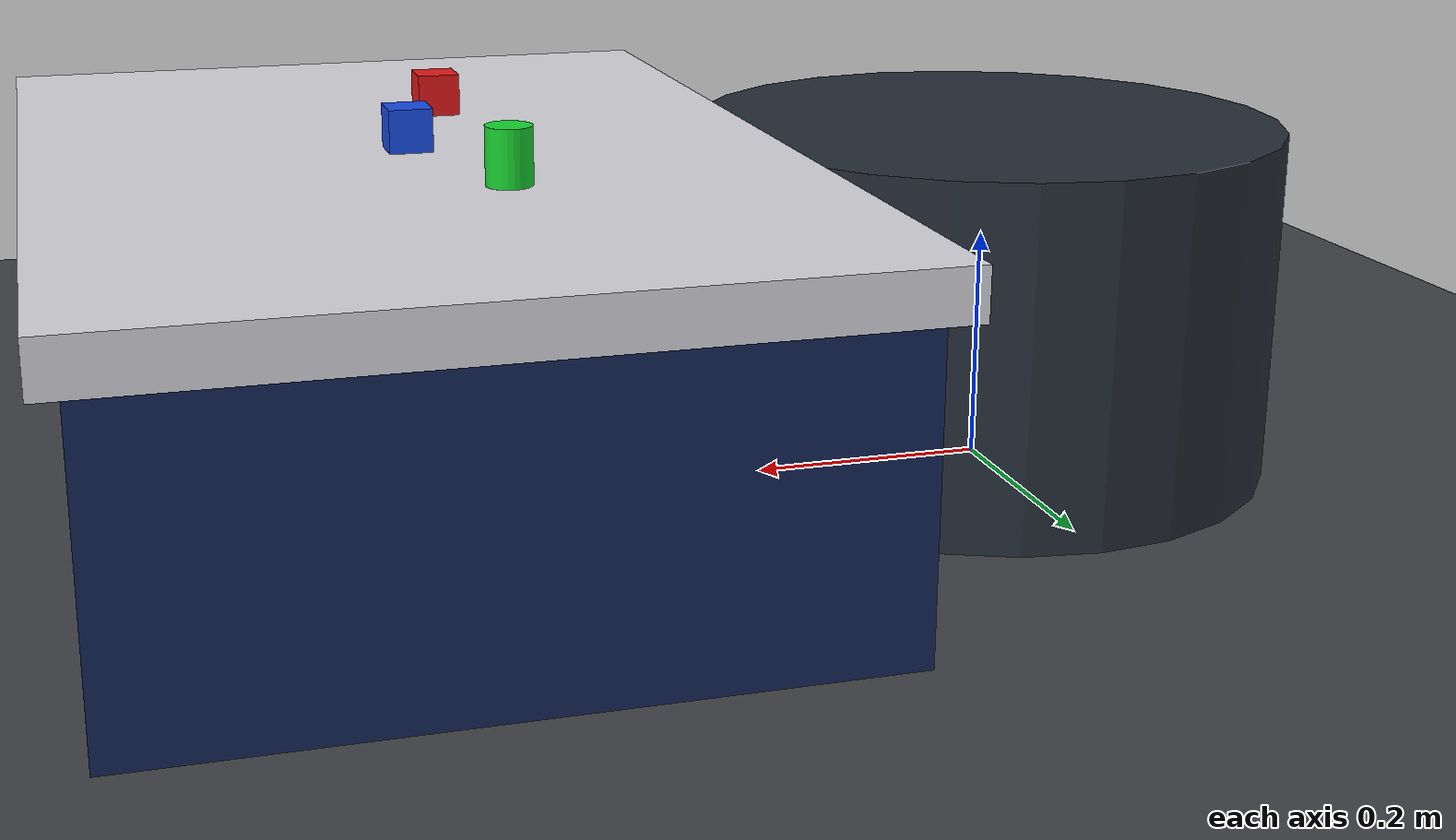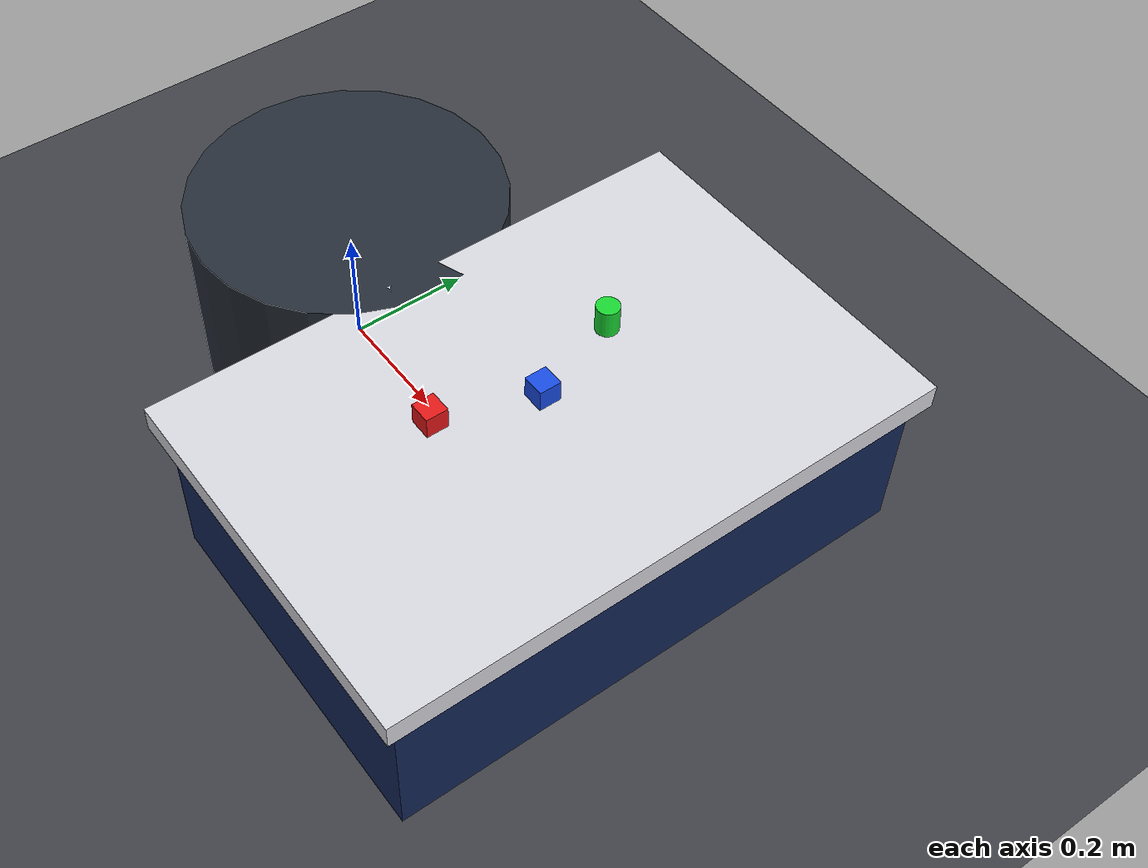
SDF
<?xml version="1.0" ?>
<sdf version="1.8">
  <world name="auron_industrial_world">
    <!-- Physics engine settings -->
    <physics name="1ms" type="ignored">
      <max_step_size>0.001</max_step_size>
      <real_time_factor>1.0</real_time_factor>
    </physics>

    <!-- Essential Gazebo Sim plugins for Harmonic -->
    <plugin filename="gz-sim-physics-system" name="gz::sim::systems::Physics"/>
    <plugin filename="gz-sim-user-commands-system" name="gz::sim::systems::UserCommands"/>
    <plugin filename="gz-sim-scene-broadcaster-system" name="gz::sim::systems::SceneBroadcaster"/>
    <plugin filename="gz-sim-sensors-system" name="gz::sim::systems::Sensors">
      <render_engine>ogre2</render_engine>
    </plugin>
    <plugin filename="gz-sim-contact-system" name="gz::sim::systems::Contact"/>

    <!-- Directional industrial overhead light -->
    <light type="directional" name="sun">
      <cast_shadows>true</cast_shadows>
      <pose>2 1 4 0 0 0</pose>
      <diffuse>0.9 0.9 0.95 1</diffuse>
      <specular>0.3 0.3 0.3 1</specular>
      <attenuation>
        <range>1000</range>
        <constant>0.9</constant>
        <linear>0.01</linear>
        <quadratic>0.001</quadratic>
      </attenuation>
      <direction>-0.4 0.2 -0.9</direction>
    </light>

    <!-- Secondary fill light -->
    <light type="directional" name="fill_light">
      <cast_shadows>false</cast_shadows>
      <pose>-2 -2 3 0 0 0</pose>
      <diffuse>0.5 0.5 0.6 1</diffuse>
      <direction>0.5 0.5 -0.7</direction>
    </light>

    <!-- Factory Ground Plane with dark industrial floor -->
    <model name="ground_plane">
      <static>true</static>
      <link name="link">
        <collision name="collision">
          <geometry>
            <plane>
              <normal>0 0 1</normal>
              <size>20 20</size>
            </plane>
          </geometry>
          <surface>
            <friction>
              <ode>
                <mu>100</mu>
                <mu2>50</mu2>
              </ode>
            </friction>
          </surface>
        </collision>
        <visual name="visual">
          <geometry>
            <plane>
              <normal>0 0 1</normal>
              <size>20 20</size>
            </plane>
          </geometry>
          <material>
            <ambient>0.25 0.26 0.28 1</ambient>
            <diffuse>0.25 0.26 0.28 1</diffuse>
            <specular>0.1 0.1 0.1 1</specular>
          </material>
        </visual>
      </link>
    </model>

    <!-- Robot Base Pedestal Stand -->
    <model name="robot_stand">
      <static>true</static>
      <pose>0 0 0.15 0 0 0</pose>
      <link name="stand_link">
        <collision name="collision">
          <geometry>
            <cylinder>
              <radius>0.25</radius>
              <length>0.30</length>
            </cylinder>
          </geometry>
        </collision>
        <visual name="visual">
          <geometry>
            <cylinder>
              <radius>0.25</radius>
              <length>0.30</length>
            </cylinder>
          </geometry>
          <material>
            <ambient>0.15 0.18 0.22 1</ambient>
            <diffuse>0.15 0.18 0.22 1</diffuse>
            <specular>0.5 0.5 0.5 1</specular>
          </material>
        </visual>
      </link>
    </model>

    <!-- Industrial Worktable -->
    <model name="work_table">
      <static>true</static>
      <pose>0.50 0 0.15 0 0 0</pose>
      <link name="table_link">
        <!-- Table top -->
        <collision name="top_collision">
          <pose>0 0 0.13 0 0 0</pose>
          <geometry>
            <box>
              <size>0.60 0.90 0.04</size>
            </box>
          </geometry>
          <surface>
            <friction>
              <ode>
                <mu>1.0</mu>
                <mu2>1.0</mu2>
              </ode>
            </friction>
          </surface>
        </collision>
        <visual name="top_visual">
          <pose>0 0 0.13 0 0 0</pose>
          <geometry>
            <box>
              <size>0.60 0.90 0.04</size>
            </box>
          </geometry>
          <material>
            <ambient>0.85 0.85 0.88 1</ambient>
            <diffuse>0.85 0.85 0.88 1</diffuse>
            <specular>0.4 0.4 0.4 1</specular>
          </material>
        </visual>
        <!-- Table frame/legs -->
        <collision name="legs_collision">
          <pose>0 0 -0.01 0 0 0</pose>
          <geometry>
            <box>
              <size>0.56 0.86 0.26</size>
            </box>
          </geometry>
        </collision>
        <visual name="legs_visual">
          <pose>0 0 -0.01 0 0 0</pose>
          <geometry>
            <box>
              <size>0.56 0.86 0.26</size>
            </box>
          </geometry>
          <material>
            <ambient>0.08 0.15 0.35 1</ambient>
            <diffuse>0.08 0.15 0.35 1</diffuse>
          </material>
        </visual>
      </link>
    </model>

    <!-- Target Demo Object 1: Red Cube -->
    <model name="red_cube">
      <pose>0.45 -0.15 0.32 0 0 0</pose>
      <link name="link">
        <inertial>
          <mass>0.04</mass>
          <inertia>
            <ixx>0.00001</ixx>
            <iyy>0.00001</iyy>
            <izz>0.00001</izz>
          </inertia>
        </inertial>
        <collision name="collision">
          <geometry>
            <box>
              <size>0.035 0.035 0.035</size>
            </box>
          </geometry>
          <surface>
            <friction>
              <ode>
                <mu>100.0</mu>
                <mu2>100.0</mu2>
              </ode>
            </friction>
          </surface>
        </collision>
        <visual name="visual">
          <geometry>
            <box>
              <size>0.035 0.035 0.035</size>
            </box>
          </geometry>
          <material>
            <ambient>0.9 0.1 0.1 1</ambient>
            <diffuse>0.9 0.1 0.1 1</diffuse>
            <specular>0.4 0.4 0.4 1</specular>
          </material>
        </visual>
      </link>
    </model>

    <!-- Target Demo Object 2: Blue Cube -->
    <model name="blue_cube">
      <pose>0.50 0.0 0.32 0 0 0</pose>
      <link name="link">
        <inertial>
          <mass>0.04</mass>
          <inertia>
            <ixx>0.00001</ixx>
            <iyy>0.00001</iyy>
            <izz>0.00001</izz>
          </inertia>
        </inertial>
        <collision name="collision">
          <geometry>
            <box>
              <size>0.035 0.035 0.035</size>
            </box>
          </geometry>
          <surface>
            <friction>
              <ode>
                <mu>100.0</mu>
                <mu2>100.0</mu2>
              </ode>
            </friction>
          </surface>
        </collision>
        <visual name="visual">
          <geometry>
            <box>
              <size>0.035 0.035 0.035</size>
            </box>
          </geometry>
          <material>
            <ambient>0.1 0.3 0.9 1</ambient>
            <diffuse>0.1 0.3 0.9 1</diffuse>
            <specular>0.4 0.4 0.4 1</specular>
          </material>
        </visual>
      </link>
    </model>

    <!-- Target Demo Object 3: Green Cylinder -->
    <model name="green_cylinder">
      <pose>0.45 0.15 0.325 0 0 0</pose>
      <link name="link">
        <inertial>
          <mass>0.04</mass>
          <inertia>
            <ixx>0.00001</ixx>
            <iyy>0.00001</iyy>
            <izz>0.00001</izz>
          </inertia>
        </inertial>
        <collision name="collision">
          <geometry>
            <cylinder>
              <radius>0.018</radius>
              <length>0.045</length>
            </cylinder>
          </geometry>
          <surface>
            <friction>
              <ode>
                <mu>100.0</mu>
                <mu2>100.0</mu2>
              </ode>
            </friction>
          </surface>
        </collision>
        <visual name="visual">
          <geometry>
            <cylinder>
              <radius>0.018</radius>
              <length>0.045</length>
            </cylinder>
          </geometry>
          <material>
            <ambient>0.1 0.85 0.2 1</ambient>
            <diffuse>0.1 0.85 0.2 1</diffuse>
            <specular>0.4 0.4 0.4 1</specular>
          </material>
        </visual>
      </link>
    </model>

  </world>
</sdf>
